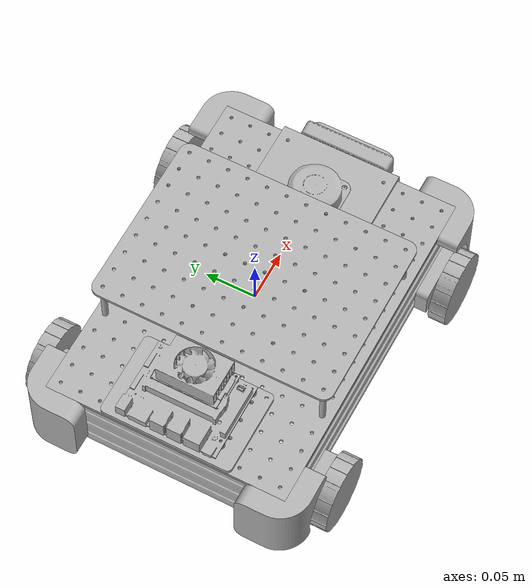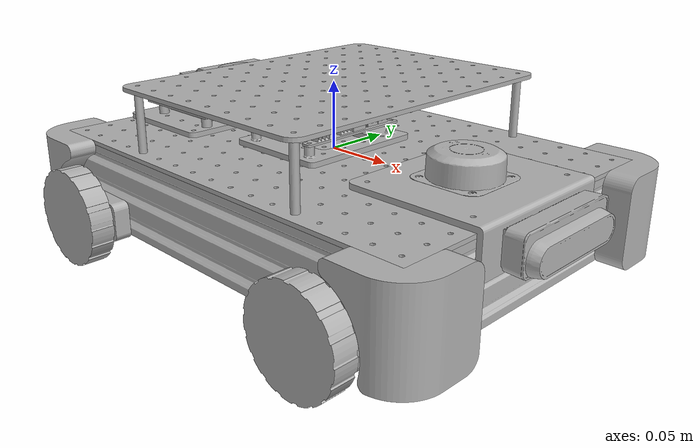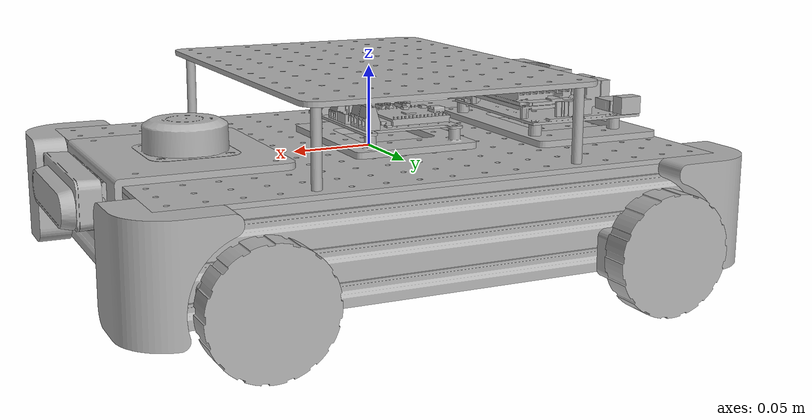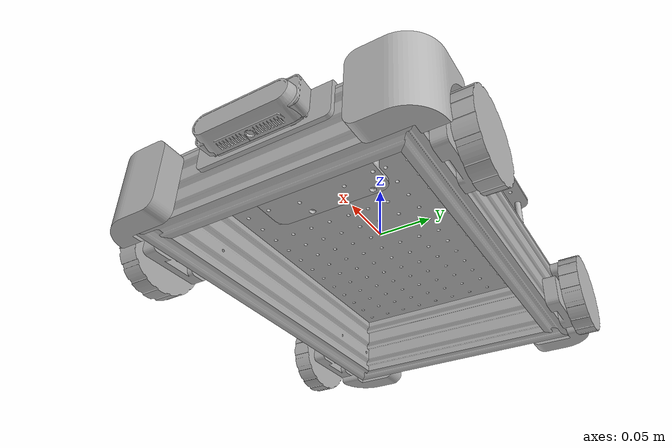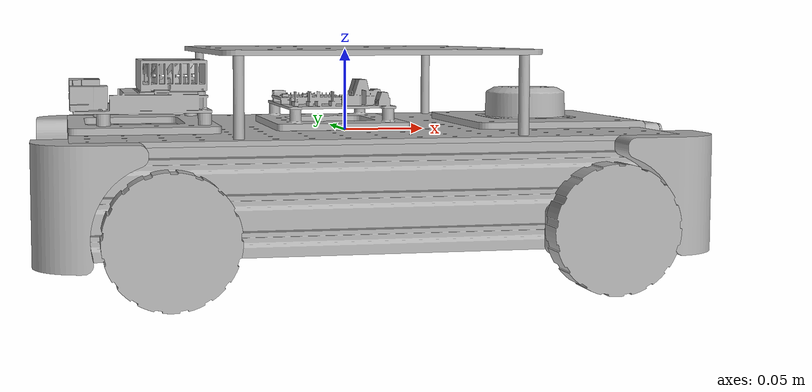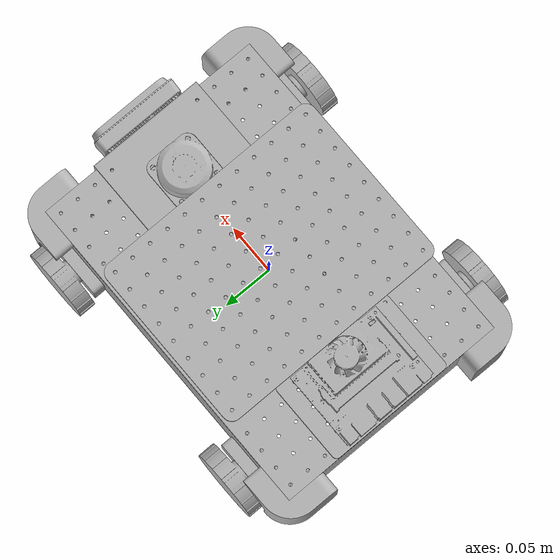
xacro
<?xml version="1.0" ?>
<robot name="base101" xmlns:xacro="http://www.ros.org/wiki/xacro">

<xacro:include filename="$(find base101_description)/urdf/materials.xacro" />
<xacro:include filename="$(find base101_description)/urdf/base101.ros2control" />
<xacro:include filename="$(find base101_description)/urdf/base101.gazebo" />
<link name="base_link">
  <inertial>
    <origin xyz="0.0 0.0 0.0" rpy="0 0 0"/>
    <mass value="0.0"/>
    <inertia ixx="0.0" iyy="0.0" izz="0.0" ixy="0.0" iyz="0.0" ixz="0.0"/>
  </inertial>
  <visual>
    <origin xyz="0 0 0" rpy="0 0 0"/>
    <geometry>
      <mesh filename="file://$(find base101_description)/meshes/base_link.stl" scale="0.001 0.001 0.001"/>
    </geometry>
    <material name="silver"/>
  </visual>
  <collision>
    <origin xyz="0 0 0" rpy="0 0 0"/>
    <geometry>
      <mesh filename="file://$(find base101_description)/meshes/base_link.stl" scale="0.001 0.001 0.001"/>
    </geometry>
  </collision>
</link>

<link name="mount_back_left_1">
  <inertial>
    <origin xyz="-0.02459324284270893 0.006233252035745818 -0.00938469409267255" rpy="0 0 0"/>
    <mass value="0.12082095734296167"/>
    <inertia ixx="1e-05" iyy="5.1e-05" izz="4.4e-05" ixy="0.0" iyz="0.0" ixz="0.0"/>
  </inertial>
  <visual>
    <origin xyz="0.09469 -0.12 0.03958" rpy="0 0 0"/>
    <geometry>
      <mesh filename="file://$(find base101_description)/meshes/mount_back_left_1.stl" scale="0.001 0.001 0.001"/>
    </geometry>
    <material name="silver"/>
  </visual>
  <collision>
    <origin xyz="0.09469 -0.12 0.03958" rpy="0 0 0"/>
    <geometry>
      <mesh filename="file://$(find base101_description)/meshes/mount_back_left_1.stl" scale="0.001 0.001 0.001"/>
    </geometry>
  </collision>
</link>

<link name="mount_back_right_1">
  <inertial>
    <origin xyz="0.025279757157193716 -0.006233252035678316 -0.009384694092671127" rpy="0 0 0"/>
    <mass value="0.12082095734296087"/>
    <inertia ixx="1e-05" iyy="5.1e-05" izz="4.4e-05" ixy="-0.0" iyz="-0.0" ixz="0.0"/>
  </inertial>
  <visual>
    <origin xyz="0.144563 0.12 0.03958" rpy="0 0 0"/>
    <geometry>
      <mesh filename="file://$(find base101_description)/meshes/mount_back_right_1.stl" scale="0.001 0.001 0.001"/>
    </geometry>
    <material name="silver"/>
  </visual>
  <collision>
    <origin xyz="0.144563 0.12 0.03958" rpy="0 0 0"/>
    <geometry>
      <mesh filename="file://$(find base101_description)/meshes/mount_back_right_1.stl" scale="0.001 0.001 0.001"/>
    </geometry>
  </collision>
</link>

<link name="mount_front_right_1">
  <inertial>
    <origin xyz="-0.024592876281054374 -0.006233252035745679 -0.009384694092668712" rpy="0 0 0"/>
    <mass value="0.12082095734296087"/>
    <inertia ixx="1e-05" iyy="5.1e-05" izz="4.4e-05" ixy="-0.0" iyz="-0.0" ixz="0.0"/>
  </inertial>
  <visual>
    <origin xyz="-0.144563 0.12 0.03958" rpy="0 0 0"/>
    <geometry>
      <mesh filename="file://$(find base101_description)/meshes/mount_front_right_1.stl" scale="0.001 0.001 0.001"/>
    </geometry>
    <material name="silver"/>
  </visual>
  <collision>
    <origin xyz="-0.144563 0.12 0.03958" rpy="0 0 0"/>
    <geometry>
      <mesh filename="file://$(find base101_description)/meshes/mount_front_right_1.stl" scale="0.001 0.001 0.001"/>
    </geometry>
  </collision>
</link>

<link name="wheel_front_left_1">
  <inertial>
    <origin xyz="2.6804890131126857e-07 0.01562372034890916 -2.795425259008444e-06" rpy="0 0 0"/>
    <mass value="0.5580832337138266"/>
    <inertia ixx="0.000188" iyy="0.000344" izz="0.000188" ixy="-0.0" iyz="-0.0" ixz="-0.0"/>
  </inertial>
  <visual>
    <origin xyz="-0.120057 -0.1289 0.045967" rpy="0 0 0"/>
    <geometry>
      <mesh filename="file://$(find base101_description)/meshes/wheel_front_left_1.stl" scale="0.001 0.001 0.001"/>
    </geometry>
    <material name="silver"/>
  </visual>
  <collision>
    <origin xyz="-0.120057 -0.1289 0.045967" rpy="0 0 0"/>
    <geometry>
      <mesh filename="file://$(find base101_description)/meshes/wheel_front_left_1.stl" scale="0.001 0.001 0.001"/>
    </geometry>
  </collision>
</link>

<link name="wheel_back_right_1">
  <inertial>
    <origin xyz="2.6804881869679775e-07 -0.015623720348976355 -2.7954252533254897e-06" rpy="0 0 0"/>
    <mass value="0.5580832337138241"/>
    <inertia ixx="0.000188" iyy="0.000344" izz="0.000188" ixy="0.0" iyz="0.0" ixz="-0.0"/>
  </inertial>
  <visual>
    <origin xyz="-0.120057 0.1289 0.045967" rpy="0 0 0"/>
    <geometry>
      <mesh filename="file://$(find base101_description)/meshes/wheel_back_right_1.stl" scale="0.001 0.001 0.001"/>
    </geometry>
    <material name="silver"/>
  </visual>
  <collision>
    <origin xyz="-0.120057 0.1289 0.045967" rpy="0 0 0"/>
    <geometry>
      <mesh filename="file://$(find base101_description)/meshes/wheel_back_right_1.stl" scale="0.001 0.001 0.001"/>
    </geometry>
  </collision>
</link>

<link name="wheel_front_right_1">
  <inertial>
    <origin xyz="-9.851292911977616e-08 -0.015623720348907993 -2.7954252577247485e-06" rpy="0 0 0"/>
    <mass value="0.5580832337138297"/>
    <inertia ixx="0.000188" iyy="0.000344" izz="0.000188" ixy="0.0" iyz="0.0" ixz="-0.0"/>
  </inertial>
  <visual>
    <origin xyz="0.119196 0.1289 0.045967" rpy="0 0 0"/>
    <geometry>
      <mesh filename="file://$(find base101_description)/meshes/wheel_front_right_1.stl" scale="0.001 0.001 0.001"/>
    </geometry>
    <material name="silver"/>
  </visual>
  <collision>
    <origin xyz="0.119196 0.1289 0.045967" rpy="0 0 0"/>
    <geometry>
      <mesh filename="file://$(find base101_description)/meshes/wheel_front_right_1.stl" scale="0.001 0.001 0.001"/>
    </geometry>
  </collision>
</link>

<link name="wheel_back_left_1">
  <inertial>
    <origin xyz="-9.851285116824204e-08 0.015623720348975967 -2.795425260569695e-06" rpy="0 0 0"/>
    <mass value="0.558083233713824"/>
    <inertia ixx="0.000188" iyy="0.000344" izz="0.000188" ixy="-0.0" iyz="-0.0" ixz="-0.0"/>
  </inertial>
  <visual>
    <origin xyz="0.119196 -0.1289 0.045967" rpy="0 0 0"/>
    <geometry>
      <mesh filename="file://$(find base101_description)/meshes/wheel_back_left_1.stl" scale="0.001 0.001 0.001"/>
    </geometry>
    <material name="silver"/>
  </visual>
  <collision>
    <origin xyz="0.119196 -0.1289 0.045967" rpy="0 0 0"/>
    <geometry>
      <mesh filename="file://$(find base101_description)/meshes/wheel_back_left_1.stl" scale="0.001 0.001 0.001"/>
    </geometry>
  </collision>
</link>

<link name="mount_front_left_1">
  <inertial>
    <origin xyz="0.025280123719046033 0.006233252035679732 -0.009384694092672119" rpy="0 0 0"/>
    <mass value="0.12082095734296167"/>
    <inertia ixx="1e-05" iyy="5.1e-05" izz="4.4e-05" ixy="0.0" iyz="0.0" ixz="0.0"/>
  </inertial>
  <visual>
    <origin xyz="-0.09469 -0.12 0.03958" rpy="0 0 0"/>
    <geometry>
      <mesh filename="file://$(find base101_description)/meshes/mount_front_left_1.stl" scale="0.001 0.001 0.001"/>
    </geometry>
    <material name="silver"/>
  </visual>
  <collision>
    <origin xyz="-0.09469 -0.12 0.03958" rpy="0 0 0"/>
    <geometry>
      <mesh filename="file://$(find base101_description)/meshes/mount_front_left_1.stl" scale="0.001 0.001 0.001"/>
    </geometry>
  </collision>
</link>

<link name="lidar_1">
  <inertial>
    <origin xyz="-0.02141560430118855 -0.02159451950091332 0.014018386187000414" rpy="0 0 0"/>
    <mass value="0.25367492511925555"/>
    <inertia ixx="0.000111" iyy="0.000111" izz="0.000156" ixy="-0.0" iyz="-0.0" ixz="0.0"/>
  </inertial>
  <visual>
    <origin xyz="-0.138888 -0.0215 0.015813" rpy="0 0 0"/>
    <geometry>
      <mesh filename="file://$(find base101_description)/meshes/lidar_1.stl" scale="0.001 0.001 0.001"/>
    </geometry>
    <material name="silver"/>
  </visual>
  <collision>
    <origin xyz="-0.138888 -0.0215 0.015813" rpy="0 0 0"/>
    <geometry>
      <mesh filename="file://$(find base101_description)/meshes/lidar_1.stl" scale="0.001 0.001 0.001"/>
    </geometry>
  </collision>
</link>

<link name="link_101_1">
  <inertial>
    <origin xyz="0.031306545312135066 0.044038259991362114 0.003067574160785399" rpy="0 0 0"/>
    <mass value="0.11478867159749062"/>
    <inertia ixx="5.9e-05" iyy="4.6e-05" izz="0.000103" ixy="-2e-06" iyz="-2e-06" ixz="-2e-06"/>
  </inertial>
  <visual>
    <origin xyz="0.0381 0.0415 -0.015" rpy="0 0 0"/>
    <geometry>
      <mesh filename="file://$(find base101_description)/meshes/link_101_1.stl" scale="0.001 0.001 0.001"/>
    </geometry>
    <material name="silver"/>
  </visual>
  <collision>
    <origin xyz="0.0381 0.0415 -0.015" rpy="0 0 0"/>
    <geometry>
      <mesh filename="file://$(find base101_description)/meshes/link_101_1.stl" scale="0.001 0.001 0.001"/>
    </geometry>
  </collision>
</link>

<link name="jetson_mount_1">
  <inertial>
    <origin xyz="0.328761 -0.987225 -0.998262" rpy="0 0 0"/>
    <mass value="0.0"/>
    <inertia ixx="0.0" iyy="0.0" izz="0.0" ixy="0.0" iyz="0.0" ixz="0.0"/>
  </inertial>
  <visual>
    <origin xyz="0.328761 -0.987225 -0.998262" rpy="0 0 0"/>
    <geometry>
      <mesh filename="file://$(find base101_description)/meshes/jetson_mount_1.stl" scale="0.001 0.001 0.001"/>
    </geometry>
    <material name="silver"/>
  </visual>
  <collision>
    <origin xyz="0.328761 -0.987225 -0.998262" rpy="0 0 0"/>
    <geometry>
      <mesh filename="file://$(find base101_description)/meshes/jetson_mount_1.stl" scale="0.001 0.001 0.001"/>
    </geometry>
  </collision>
</link>

<link name="orin_simplified_1">
  <inertial>
    <origin xyz="-0.03495299257378828 0.045058955233220725 0.010049941252492962" rpy="0 0 0"/>
    <mass value="0.5438423650017178"/>
    <inertia ixx="0.00033" iyy="0.000355" izz="0.00062" ixy="-1.1e-05" iyz="-4e-06" ixz="-3.3e-05"/>
  </inertial>
  <visual>
    <origin xyz="0.092 0.046136 -0.014" rpy="0 0 0"/>
    <geometry>
      <mesh filename="file://$(find base101_description)/meshes/orin_simplified_1.stl" scale="0.001 0.001 0.001"/>
    </geometry>
    <material name="silver"/>
  </visual>
  <collision>
    <origin xyz="0.092 0.046136 -0.014" rpy="0 0 0"/>
    <geometry>
      <mesh filename="file://$(find base101_description)/meshes/orin_simplified_1.stl" scale="0.001 0.001 0.001"/>
    </geometry>
  </collision>
</link>

<link name="box_left_1">
  <inertial>
    <origin xyz="-0.1699999999999702 -0.009742646476662592 -0.029992888070214718" rpy="0 0 0"/>
    <mass value="1.076322920017121"/>
    <inertia ixx="0.00042" iyy="0.009599" izz="0.009268" ixy="0.0" iyz="0.0" ixz="0.0"/>
  </inertial>
  <visual>
    <origin xyz="-0.17 -0.12 -0.0" rpy="0 0 0"/>
    <geometry>
      <mesh filename="file://$(find base101_description)/meshes/box_left_1.stl" scale="0.001 0.001 0.001"/>
    </geometry>
    <material name="silver"/>
  </visual>
  <collision>
    <origin xyz="-0.17 -0.12 -0.0" rpy="0 0 0"/>
    <geometry>
      <mesh filename="file://$(find base101_description)/meshes/box_left_1.stl" scale="0.001 0.001 0.001"/>
    </geometry>
  </collision>
</link>

<link name="box_right_1">
  <inertial>
    <origin xyz="-0.17000000000002408 0.00974264647668803 -0.029992888070211592" rpy="0 0 0"/>
    <mass value="1.0763229200170252"/>
    <inertia ixx="0.00042" iyy="0.009599" izz="0.009268" ixy="0.0" iyz="-0.0" ixz="0.0"/>
  </inertial>
  <visual>
    <origin xyz="-0.17 0.12 -0.0" rpy="0 0 0"/>
    <geometry>
      <mesh filename="file://$(find base101_description)/meshes/box_right_1.stl" scale="0.001 0.001 0.001"/>
    </geometry>
    <material name="silver"/>
  </visual>
  <collision>
    <origin xyz="-0.17 0.12 -0.0" rpy="0 0 0"/>
    <geometry>
      <mesh filename="file://$(find base101_description)/meshes/box_right_1.stl" scale="0.001 0.001 0.001"/>
    </geometry>
  </collision>
</link>

<link name="box_front_1">
  <inertial>
    <origin xyz="-0.009625945290503007 -4.9027448767446915e-14 -0.030000000000004974" rpy="0 0 0"/>
    <mass value="0.7405213424764614"/>
    <inertia ixx="0.003275" iyy="0.000289" izz="0.003048" ixy="-0.0" iyz="0.0" ixz="-0.0"/>
  </inertial>
  <visual>
    <origin xyz="-0.17 0.0 -0.0" rpy="0 0 0"/>
    <geometry>
      <mesh filename="file://$(find base101_description)/meshes/box_front_1.stl" scale="0.001 0.001 0.001"/>
    </geometry>
    <material name="silver"/>
  </visual>
  <collision>
    <origin xyz="-0.17 0.0 -0.0" rpy="0 0 0"/>
    <geometry>
      <mesh filename="file://$(find base101_description)/meshes/box_front_1.stl" scale="0.001 0.001 0.001"/>
    </geometry>
  </collision>
</link>

<link name="lidar_mount_1">
  <inertial>
    <origin xyz="0.011724860892985328 -0.05013384874236735 -0.016163622851069023" rpy="0 0 0"/>
    <mass value="0.20406956365580842"/>
    <inertia ixx="0.000244" iyy="8.4e-05" izz="0.000322" ixy="-0.0" iyz="-0.0" ixz="-2e-06"/>
  </inertial>
  <visual>
    <origin xyz="-0.1 -0.05 -0.0" rpy="0 0 0"/>
    <geometry>
      <mesh filename="file://$(find base101_description)/meshes/lidar_mount_1.stl" scale="0.001 0.001 0.001"/>
    </geometry>
    <material name="silver"/>
  </visual>
  <collision>
    <origin xyz="-0.1 -0.05 -0.0" rpy="0 0 0"/>
    <geometry>
      <mesh filename="file://$(find base101_description)/meshes/lidar_mount_1.stl" scale="0.001 0.001 0.001"/>
    </geometry>
  </collision>
</link>

<link name="camera_realsense_1">
  <inertial>
    <origin xyz="0.011657428106573553 0.023908281806439217 -2.3487348346350884e-05" rpy="0 0 0"/>
    <mass value="0.0720014321603861"/>
    <inertia ixx="4.6e-05" iyy="7e-06" izz="4.7e-05" ixy="0.0" iyz="0.0" ixz="0.0"/>
  </inertial>
  <visual>
    <origin xyz="-0.174 0.0225 0.0135" rpy="0 0 0"/>
    <geometry>
      <mesh filename="file://$(find base101_description)/meshes/camera_realsense_1.stl" scale="0.001 0.001 0.001"/>
    </geometry>
    <material name="silver"/>
  </visual>
  <collision>
    <origin xyz="-0.174 0.0225 0.0135" rpy="0 0 0"/>
    <geometry>
      <mesh filename="file://$(find base101_description)/meshes/camera_realsense_1.stl" scale="0.001 0.001 0.001"/>
    </geometry>
  </collision>
</link>

<link name="camera_luxonis_1">
  <inertial>
    <origin xyz="0.00916343685826626 -0.03730515965817697 -0.004407104798307559" rpy="0 0 0"/>
    <mass value="0.15709665163724262"/>
    <inertia ixx="0.000123" iyy="1.6e-05" izz="0.000117" ixy="0.0" iyz="0.0" ixz="0.0"/>
  </inertial>
  <visual>
    <origin xyz="-0.174 -0.0375 0.0055" rpy="0 0 0"/>
    <geometry>
      <mesh filename="file://$(find base101_description)/meshes/camera_luxonis_1.stl" scale="0.001 0.001 0.001"/>
    </geometry>
    <material name="silver"/>
  </visual>
  <collision>
    <origin xyz="-0.174 -0.0375 0.0055" rpy="0 0 0"/>
    <geometry>
      <mesh filename="file://$(find base101_description)/meshes/camera_luxonis_1.stl" scale="0.001 0.001 0.001"/>
    </geometry>
  </collision>
</link>

<link name="camera_edge_bracket_1">
  <inertial>
    <origin xyz="-0.16 -0.05 -0.003" rpy="0 0 0"/>
    <mass value="0.0"/>
    <inertia ixx="0.0" iyy="0.0" izz="0.0" ixy="0.0" iyz="0.0" ixz="0.0"/>
  </inertial>
  <visual>
    <origin xyz="-0.16 -0.05 -0.003" rpy="0 0 0"/>
    <geometry>
      <mesh filename="file://$(find base101_description)/meshes/camera_edge_bracket_1.stl" scale="0.001 0.001 0.001"/>
    </geometry>
    <material name="silver"/>
  </visual>
  <collision>
    <origin xyz="-0.16 -0.05 -0.003" rpy="0 0 0"/>
    <geometry>
      <mesh filename="file://$(find base101_description)/meshes/camera_edge_bracket_1.stl" scale="0.001 0.001 0.001"/>
    </geometry>
  </collision>
</link>

<link name="box_back_1">
  <inertial>
    <origin xyz="0.00962594529047267 4.860112312599085e-14 -0.02999999999999773" rpy="0 0 0"/>
    <mass value="0.7405213424764386"/>
    <inertia ixx="0.003275" iyy="0.000289" izz="0.003048" ixy="-0.0" iyz="-0.0" ixz="0.0"/>
  </inertial>
  <visual>
    <origin xyz="0.17 -0.0 -0.0" rpy="0 0 0"/>
    <geometry>
      <mesh filename="file://$(find base101_description)/meshes/box_back_1.stl" scale="0.001 0.001 0.001"/>
    </geometry>
    <material name="silver"/>
  </visual>
  <collision>
    <origin xyz="0.17 -0.0 -0.0" rpy="0 0 0"/>
    <geometry>
      <mesh filename="file://$(find base101_description)/meshes/box_back_1.stl" scale="0.001 0.001 0.001"/>
    </geometry>
  </collision>
</link>

<link name="bumper_front_left_1">
  <inertial>
    <origin xyz="0.003209474912566651 -0.007429846051568101 -0.030298668758107793" rpy="0 0 0"/>
    <mass value="0.7138695596557193"/>
    <inertia ixx="0.00047" iyy="0.000371" izz="0.000311" ixy="8.4e-05" iyz="-3.4e-05" ixz="5.1e-05"/>
  </inertial>
  <visual>
    <origin xyz="-0.17 -0.12 -0.003" rpy="0 0 0"/>
    <geometry>
      <mesh filename="file://$(find base101_description)/meshes/bumper_front_left_1.stl" scale="0.001 0.001 0.001"/>
    </geometry>
    <material name="silver"/>
  </visual>
  <collision>
    <origin xyz="-0.17 -0.12 -0.003" rpy="0 0 0"/>
    <geometry>
      <mesh filename="file://$(find base101_description)/meshes/bumper_front_left_1.stl" scale="0.001 0.001 0.001"/>
    </geometry>
  </collision>
</link>

<link name="bumper_front_right_1">
  <inertial>
    <origin xyz="0.0032094749124892408 0.007429846051513103 -0.030298668758108178" rpy="0 0 0"/>
    <mass value="0.713869559655912"/>
    <inertia ixx="0.00047" iyy="0.000371" izz="0.000311" ixy="-8.4e-05" iyz="3.4e-05" ixz="5.1e-05"/>
  </inertial>
  <visual>
    <origin xyz="-0.17 0.12 -0.003" rpy="0 0 0"/>
    <geometry>
      <mesh filename="file://$(find base101_description)/meshes/bumper_front_right_1.stl" scale="0.001 0.001 0.001"/>
    </geometry>
    <material name="silver"/>
  </visual>
  <collision>
    <origin xyz="-0.17 0.12 -0.003" rpy="0 0 0"/>
    <geometry>
      <mesh filename="file://$(find base101_description)/meshes/bumper_front_right_1.stl" scale="0.001 0.001 0.001"/>
    </geometry>
  </collision>
</link>

<link name="bumper_back_right_1">
  <inertial>
    <origin xyz="-0.00320950686699617 0.007429900292464028 -0.030298623663075237" rpy="0 0 0"/>
    <mass value="0.7138678327776966"/>
    <inertia ixx="0.00047" iyy="0.000371" izz="0.000311" ixy="8.4e-05" iyz="3.4e-05" ixz="-5.1e-05"/>
  </inertial>
  <visual>
    <origin xyz="0.17 0.12 -0.003" rpy="0 0 0"/>
    <geometry>
      <mesh filename="file://$(find base101_description)/meshes/bumper_back_right_1.stl" scale="0.001 0.001 0.001"/>
    </geometry>
    <material name="silver"/>
  </visual>
  <collision>
    <origin xyz="0.17 0.12 -0.003" rpy="0 0 0"/>
    <geometry>
      <mesh filename="file://$(find base101_description)/meshes/bumper_back_right_1.stl" scale="0.001 0.001 0.001"/>
    </geometry>
  </collision>
</link>

<link name="bumper_back_left_1">
  <inertial>
    <origin xyz="-0.0032095068667997717 -0.007429900291459221 -0.03029862366305505" rpy="0 0 0"/>
    <mass value="0.7138678327723961"/>
    <inertia ixx="0.00047" iyy="0.000371" izz="0.000311" ixy="-8.4e-05" iyz="-3.4e-05" ixz="-5.1e-05"/>
  </inertial>
  <visual>
    <origin xyz="0.17 -0.12 -0.003" rpy="0 0 0"/>
    <geometry>
      <mesh filename="file://$(find base101_description)/meshes/bumper_back_left_1.stl" scale="0.001 0.001 0.001"/>
    </geometry>
    <material name="silver"/>
  </visual>
  <collision>
    <origin xyz="0.17 -0.12 -0.003" rpy="0 0 0"/>
    <geometry>
      <mesh filename="file://$(find base101_description)/meshes/bumper_back_left_1.stl" scale="0.001 0.001 0.001"/>
    </geometry>
  </collision>
</link>

<link name="orp_link101_mount_1">
  <inertial>
    <origin xyz="0.188761 -0.987225 -0.998262" rpy="0 0 0"/>
    <mass value="0.0"/>
    <inertia ixx="0.0" iyy="0.0" izz="0.0" ixy="0.0" iyz="0.0" ixz="0.0"/>
  </inertial>
  <visual>
    <origin xyz="0.188761 -0.987225 -0.998262" rpy="0 0 0"/>
    <geometry>
      <mesh filename="file://$(find base101_description)/meshes/orp_link101_mount_1.stl" scale="0.001 0.001 0.001"/>
    </geometry>
    <material name="silver"/>
  </visual>
  <collision>
    <origin xyz="0.188761 -0.987225 -0.998262" rpy="0 0 0"/>
    <geometry>
      <mesh filename="file://$(find base101_description)/meshes/orp_link101_mount_1.stl" scale="0.001 0.001 0.001"/>
    </geometry>
  </collision>
</link>

<link name="top_plate_1">
  <inertial>
    <origin xyz="0.07995068910527038 0.10999999999999233 0.0015000242999967106" rpy="0 0 0"/>
    <mass value="0.9903241058429337"/>
    <inertia ixx="0.004737" iyy="0.002662" izz="0.007398" ixy="-0.0" iyz="0.0" ixz="0.0"/>
  </inertial>
  <visual>
    <origin xyz="0.08 0.11 -0.048" rpy="0 0 0"/>
    <geometry>
      <mesh filename="file://$(find base101_description)/meshes/top_plate_1.stl" scale="0.001 0.001 0.001"/>
    </geometry>
    <material name="silver"/>
  </visual>
  <collision>
    <origin xyz="0.08 0.11 -0.048" rpy="0 0 0"/>
    <geometry>
      <mesh filename="file://$(find base101_description)/meshes/top_plate_1.stl" scale="0.001 0.001 0.001"/>
    </geometry>
  </collision>
</link>

<link name="standoff3_1">
  <inertial>
    <origin xyz="-3.354261313148754e-14 -3.3650859876388495e-13 0.022500012150000942" rpy="0 0 0"/>
    <mass value="0.009987924624345538"/>
    <inertia ixx="2e-06" iyy="2e-06" izz="0.0" ixy="-0.0" iyz="-0.0" ixz="0.0"/>
  </inertial>
  <visual>
    <origin xyz="-0.08 0.11 -0.003" rpy="0 0 0"/>
    <geometry>
      <mesh filename="file://$(find base101_description)/meshes/standoff3_1.stl" scale="0.001 0.001 0.001"/>
    </geometry>
    <material name="silver"/>
  </visual>
  <collision>
    <origin xyz="-0.08 0.11 -0.003" rpy="0 0 0"/>
    <geometry>
      <mesh filename="file://$(find base101_description)/meshes/standoff3_1.stl" scale="0.001 0.001 0.001"/>
    </geometry>
  </collision>
</link>

<link name="standoff4_1">
  <inertial>
    <origin xyz="2.983724378680108e-14 -3.3650859876388495e-13 0.022500012149998385" rpy="0 0 0"/>
    <mass value="0.009987924624345538"/>
    <inertia ixx="2e-06" iyy="2e-06" izz="0.0" ixy="-0.0" iyz="0.0" ixz="0.0"/>
  </inertial>
  <visual>
    <origin xyz="-0.08 -0.11 -0.003" rpy="0 0 0"/>
    <geometry>
      <mesh filename="file://$(find base101_description)/meshes/standoff4_1.stl" scale="0.001 0.001 0.001"/>
    </geometry>
    <material name="silver"/>
  </visual>
  <collision>
    <origin xyz="-0.08 -0.11 -0.003" rpy="0 0 0"/>
    <geometry>
      <mesh filename="file://$(find base101_description)/meshes/standoff4_1.stl" scale="0.001 0.001 0.001"/>
    </geometry>
  </collision>
</link>

<link name="standoff2__1__1">
  <inertial>
    <origin xyz="-2.9129476608602545e-14 3.331085407509704e-13 0.022500012150000658" rpy="0 0 0"/>
    <mass value="0.009987924624345538"/>
    <inertia ixx="2e-06" iyy="2e-06" izz="0.0" ixy="-0.0" iyz="0.0" ixz="-0.0"/>
  </inertial>
  <visual>
    <origin xyz="0.08 0.11 -0.003" rpy="0 0 0"/>
    <geometry>
      <mesh filename="file://$(find base101_description)/meshes/standoff2__1__1.stl" scale="0.001 0.001 0.001"/>
    </geometry>
    <material name="silver"/>
  </visual>
  <collision>
    <origin xyz="0.08 0.11 -0.003" rpy="0 0 0"/>
    <geometry>
      <mesh filename="file://$(find base101_description)/meshes/standoff2__1__1.stl" scale="0.001 0.001 0.001"/>
    </geometry>
  </collision>
</link>

<link name="standoff2_1">
  <inertial>
    <origin xyz="3.126665593100597e-14 3.3707758806400534e-13 0.022500012149999804" rpy="0 0 0"/>
    <mass value="0.009987924624345538"/>
    <inertia ixx="2e-06" iyy="2e-06" izz="0.0" ixy="-0.0" iyz="0.0" ixz="-0.0"/>
  </inertial>
  <visual>
    <origin xyz="0.08 -0.11 -0.003" rpy="0 0 0"/>
    <geometry>
      <mesh filename="file://$(find base101_description)/meshes/standoff2_1.stl" scale="0.001 0.001 0.001"/>
    </geometry>
    <material name="silver"/>
  </visual>
  <collision>
    <origin xyz="0.08 -0.11 -0.003" rpy="0 0 0"/>
    <geometry>
      <mesh filename="file://$(find base101_description)/meshes/standoff2_1.stl" scale="0.001 0.001 0.001"/>
    </geometry>
  </collision>
</link>

<joint name="Rigid 12" type="fixed">
  <origin xyz="-0.26469 0.0 -0.03958" rpy="0 0 0"/>
  <parent link="box_left_1"/>
  <child link="mount_back_left_1"/>
</joint>

<joint name="Rigid 13" type="fixed">
  <origin xyz="-0.314563 0.0 -0.03958" rpy="0 0 0"/>
  <parent link="box_right_1"/>
  <child link="mount_back_right_1"/>
</joint>

<joint name="Rigid 14" type="fixed">
  <origin xyz="-0.025437 0.0 -0.03958" rpy="0 0 0"/>
  <parent link="box_right_1"/>
  <child link="mount_front_right_1"/>
</joint>

<joint name="Revolute 15" type="continuous">
  <origin xyz="0.025367 0.0089 -0.006387" rpy="0 0 0"/>
  <parent link="mount_front_left_1"/>
  <child link="wheel_front_left_1"/>
  <axis xyz="0.0 1.0 0.0"/>
</joint>

<joint name="Revolute 16" type="continuous">
  <origin xyz="-0.024506 -0.0089 -0.006387" rpy="0 0 0"/>
  <parent link="mount_front_right_1"/>
  <child link="wheel_back_right_1"/>
  <axis xyz="-0.0 -1.0 -0.0"/>
</joint>

<joint name="Revolute 17" type="continuous">
  <origin xyz="0.025367 -0.0089 -0.006387" rpy="0 0 0"/>
  <parent link="mount_back_right_1"/>
  <child link="wheel_front_right_1"/>
  <axis xyz="-0.0 -1.0 -0.0"/>
</joint>

<joint name="Revolute 18" type="continuous">
  <origin xyz="-0.024506 0.0089 -0.006387" rpy="0 0 0"/>
  <parent link="mount_back_left_1"/>
  <child link="wheel_back_left_1"/>
  <axis xyz="0.0 1.0 0.0"/>
</joint>

<joint name="Rigid 30" type="fixed">
  <origin xyz="-0.07531 0.0 -0.03958" rpy="0 0 0"/>
  <parent link="box_left_1"/>
  <child link="mount_front_left_1"/>
</joint>

<joint name="Rigid 31" type="fixed">
  <origin xyz="0.038888 -0.0285 -0.015813" rpy="0 0 0"/>
  <parent link="lidar_mount_1"/>
  <child link="lidar_1"/>
</joint>

<joint name="Rigid 42" type="fixed">
  <origin xyz="0.150661 -1.028725 -0.983262" rpy="0 0 0"/>
  <parent link="orp_link101_mount_1"/>
  <child link="link_101_1"/>
</joint>

<joint name="Rigid 56" type="fixed">
  <origin xyz="-0.328761 0.987225 0.998262" rpy="0 0 0"/>
  <parent link="base_link"/>
  <child link="jetson_mount_1"/>
</joint>

<joint name="Rigid 57" type="fixed">
  <origin xyz="0.236761 -1.033361 -0.984262" rpy="0 0 0"/>
  <parent link="jetson_mount_1"/>
  <child link="orin_simplified_1"/>
</joint>

<joint name="Rigid 58" type="fixed">
  <origin xyz="0.17 0.12 0.0" rpy="0 0 0"/>
  <parent link="base_link"/>
  <child link="box_left_1"/>
</joint>

<joint name="Rigid 59" type="fixed">
  <origin xyz="0.17 -0.12 0.0" rpy="0 0 0"/>
  <parent link="base_link"/>
  <child link="box_right_1"/>
</joint>

<joint name="Rigid 60" type="fixed">
  <origin xyz="0.17 0.0 0.0" rpy="0 0 0"/>
  <parent link="base_link"/>
  <child link="box_front_1"/>
</joint>

<joint name="Rigid 61" type="fixed">
  <origin xyz="0.1 0.05 0.0" rpy="0 0 0"/>
  <parent link="base_link"/>
  <child link="lidar_mount_1"/>
</joint>

<joint name="Rigid 62" type="fixed">
  <origin xyz="0.014 -0.0725 -0.0165" rpy="0 0 0"/>
  <parent link="camera_edge_bracket_1"/>
  <child link="camera_realsense_1"/>
</joint>

<joint name="Rigid 63" type="fixed">
  <origin xyz="0.014 -0.0125 -0.0085" rpy="0 0 0"/>
  <parent link="camera_edge_bracket_1"/>
  <child link="camera_luxonis_1"/>
</joint>

<joint name="Rigid 64" type="fixed">
  <origin xyz="0.16 0.05 0.003" rpy="0 0 0"/>
  <parent link="base_link"/>
  <child link="camera_edge_bracket_1"/>
</joint>

<joint name="Rigid 65" type="fixed">
  <origin xyz="-0.17 0.0 0.0" rpy="0 0 0"/>
  <parent link="base_link"/>
  <child link="box_back_1"/>
</joint>

<joint name="Rigid 66" type="fixed">
  <origin xyz="0.17 0.12 0.003" rpy="0 0 0"/>
  <parent link="base_link"/>
  <child link="bumper_front_left_1"/>
</joint>

<joint name="Rigid 67" type="fixed">
  <origin xyz="0.17 -0.12 0.003" rpy="0 0 0"/>
  <parent link="base_link"/>
  <child link="bumper_front_right_1"/>
</joint>

<joint name="Rigid 68" type="fixed">
  <origin xyz="-0.17 -0.12 0.003" rpy="0 0 0"/>
  <parent link="base_link"/>
  <child link="bumper_back_right_1"/>
</joint>

<joint name="Rigid 69" type="fixed">
  <origin xyz="-0.17 0.12 0.003" rpy="0 0 0"/>
  <parent link="base_link"/>
  <child link="bumper_back_left_1"/>
</joint>

<joint name="Rigid 70" type="fixed">
  <origin xyz="-0.188761 0.987225 0.998262" rpy="0 0 0"/>
  <parent link="base_link"/>
  <child link="orp_link101_mount_1"/>
</joint>

<joint name="Rigid 71" type="fixed">
  <origin xyz="0.0 0.0 0.045" rpy="0 0 0"/>
  <parent link="standoff2__1__1"/>
  <child link="top_plate_1"/>
</joint>

<joint name="Rigid 72" type="fixed">
  <origin xyz="0.08 -0.11 0.003" rpy="0 0 0"/>
  <parent link="base_link"/>
  <child link="standoff3_1"/>
</joint>

<joint name="Rigid 73" type="fixed">
  <origin xyz="0.08 0.11 0.003" rpy="0 0 0"/>
  <parent link="base_link"/>
  <child link="standoff4_1"/>
</joint>

<joint name="Rigid 74" type="fixed">
  <origin xyz="-0.08 -0.11 0.003" rpy="0 0 0"/>
  <parent link="base_link"/>
  <child link="standoff2__1__1"/>
</joint>

<joint name="Rigid 75" type="fixed">
  <origin xyz="-0.08 0.11 0.003" rpy="0 0 0"/>
  <parent link="base_link"/>
  <child link="standoff2_1"/>
</joint>

</robot>

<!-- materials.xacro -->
<robot name="base101" xmlns:xacro="http://www.ros.org/wiki/xacro">

  <material name="silver">
    <color rgba="0.700 0.700 0.700 1.0"/>
  </material>

  <material name="body_aluminum">
    <color rgba="0.770 0.780 0.790 1.0"/>
  </material>

  <material name="accent_green">
    <color rgba="0.180 0.580 0.270 1.0"/>
  </material>

  <material name="motor_black">
    <color rgba="0.050 0.050 0.050 1.0"/>
  </material>

</robot>

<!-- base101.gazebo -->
<robot name="base101" xmlns:xacro="http://www.ros.org/wiki/xacro" >

<xacro:property name="body_color" value="Gazebo/Silver" />

<gazebo reference="base_link">
  <material>${body_color}</material>
  <mu1>0.2</mu1>
  <mu2>0.2</mu2>
  <self_collide>true</self_collide>
  <gravity>true</gravity>
</gazebo>

<gazebo reference="mount_back_left_1">
  <material>${body_color}</material>
  <mu1>0.2</mu1>
  <mu2>0.2</mu2>
  <self_collide>true</self_collide>
</gazebo>

<gazebo reference="mount_back_right_1">
  <material>${body_color}</material>
  <mu1>0.2</mu1>
  <mu2>0.2</mu2>
  <self_collide>true</self_collide>
</gazebo>

<gazebo reference="mount_front_right_1">
  <material>${body_color}</material>
  <mu1>0.2</mu1>
  <mu2>0.2</mu2>
  <self_collide>true</self_collide>
</gazebo>

<gazebo reference="wheel_front_left_1">
  <material>${body_color}</material>
  <mu1>0.2</mu1>
  <mu2>0.2</mu2>
  <self_collide>true</self_collide>
</gazebo>

<gazebo reference="wheel_back_right_1">
  <material>${body_color}</material>
  <mu1>0.2</mu1>
  <mu2>0.2</mu2>
  <self_collide>true</self_collide>
</gazebo>

<gazebo reference="wheel_front_right_1">
  <material>${body_color}</material>
  <mu1>0.2</mu1>
  <mu2>0.2</mu2>
  <self_collide>true</self_collide>
</gazebo>

<gazebo reference="wheel_back_left_1">
  <material>${body_color}</material>
  <mu1>0.2</mu1>
  <mu2>0.2</mu2>
  <self_collide>true</self_collide>
</gazebo>

<gazebo reference="mount_front_left_1">
  <material>${body_color}</material>
  <mu1>0.2</mu1>
  <mu2>0.2</mu2>
  <self_collide>true</self_collide>
</gazebo>

<gazebo reference="lidar_1">
  <material>${body_color}</material>
  <mu1>0.2</mu1>
  <mu2>0.2</mu2>
  <self_collide>true</self_collide>
</gazebo>

<gazebo reference="link_101_1">
  <material>${body_color}</material>
  <mu1>0.2</mu1>
  <mu2>0.2</mu2>
  <self_collide>true</self_collide>
</gazebo>

<gazebo reference="jetson_mount_1">
  <material>${body_color}</material>
  <mu1>0.2</mu1>
  <mu2>0.2</mu2>
  <self_collide>true</self_collide>
</gazebo>

<gazebo reference="orin_simplified_1">
  <material>${body_color}</material>
  <mu1>0.2</mu1>
  <mu2>0.2</mu2>
  <self_collide>true</self_collide>
</gazebo>

<gazebo reference="box_left_1">
  <material>${body_color}</material>
  <mu1>0.2</mu1>
  <mu2>0.2</mu2>
  <self_collide>true</self_collide>
</gazebo>

<gazebo reference="box_right_1">
  <material>${body_color}</material>
  <mu1>0.2</mu1>
  <mu2>0.2</mu2>
  <self_collide>true</self_collide>
</gazebo>

<gazebo reference="box_front_1">
  <material>${body_color}</material>
  <mu1>0.2</mu1>
  <mu2>0.2</mu2>
  <self_collide>true</self_collide>
</gazebo>

<gazebo reference="lidar_mount_1">
  <material>${body_color}</material>
  <mu1>0.2</mu1>
  <mu2>0.2</mu2>
  <self_collide>true</self_collide>
</gazebo>

<gazebo reference="camera_realsense_1">
  <material>${body_color}</material>
  <mu1>0.2</mu1>
  <mu2>0.2</mu2>
  <self_collide>true</self_collide>
</gazebo>

<gazebo reference="camera_luxonis_1">
  <material>${body_color}</material>
  <mu1>0.2</mu1>
  <mu2>0.2</mu2>
  <self_collide>true</self_collide>
</gazebo>

<gazebo reference="camera_edge_bracket_1">
  <material>${body_color}</material>
  <mu1>0.2</mu1>
  <mu2>0.2</mu2>
  <self_collide>true</self_collide>
</gazebo>

<gazebo reference="box_back_1">
  <material>${body_color}</material>
  <mu1>0.2</mu1>
  <mu2>0.2</mu2>
  <self_collide>true</self_collide>
</gazebo>

<gazebo reference="bumper_front_left_1">
  <material>${body_color}</material>
  <mu1>0.2</mu1>
  <mu2>0.2</mu2>
  <self_collide>true</self_collide>
</gazebo>

<gazebo reference="bumper_front_right_1">
  <material>${body_color}</material>
  <mu1>0.2</mu1>
  <mu2>0.2</mu2>
  <self_collide>true</self_collide>
</gazebo>

<gazebo reference="bumper_back_right_1">
  <material>${body_color}</material>
  <mu1>0.2</mu1>
  <mu2>0.2</mu2>
  <self_collide>true</self_collide>
</gazebo>

<gazebo reference="bumper_back_left_1">
  <material>${body_color}</material>
  <mu1>0.2</mu1>
  <mu2>0.2</mu2>
  <self_collide>true</self_collide>
</gazebo>

<gazebo reference="orp_link101_mount_1">
  <material>${body_color}</material>
  <mu1>0.2</mu1>
  <mu2>0.2</mu2>
  <self_collide>true</self_collide>
</gazebo>

<gazebo reference="top_plate_1">
  <material>${body_color}</material>
  <mu1>0.2</mu1>
  <mu2>0.2</mu2>
  <self_collide>true</self_collide>
</gazebo>

<gazebo reference="standoff3_1">
  <material>${body_color}</material>
  <mu1>0.2</mu1>
  <mu2>0.2</mu2>
  <self_collide>true</self_collide>
</gazebo>

<gazebo reference="standoff4_1">
  <material>${body_color}</material>
  <mu1>0.2</mu1>
  <mu2>0.2</mu2>
  <self_collide>true</self_collide>
</gazebo>

<gazebo reference="standoff2__1__1">
  <material>${body_color}</material>
  <mu1>0.2</mu1>
  <mu2>0.2</mu2>
  <self_collide>true</self_collide>
</gazebo>

<gazebo reference="standoff2_1">
  <material>${body_color}</material>
  <mu1>0.2</mu1>
  <mu2>0.2</mu2>
  <self_collide>true</self_collide>
</gazebo>

</robot>
